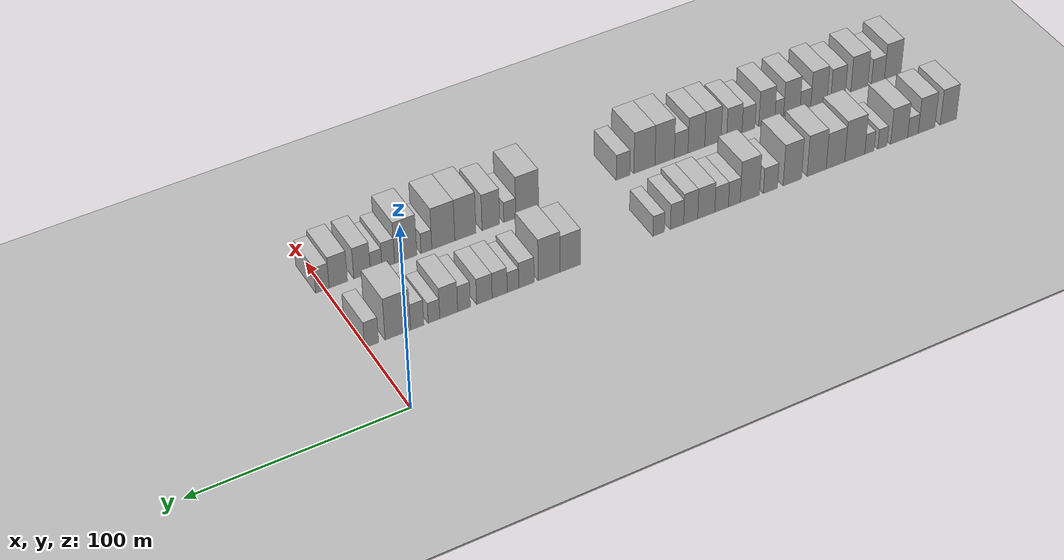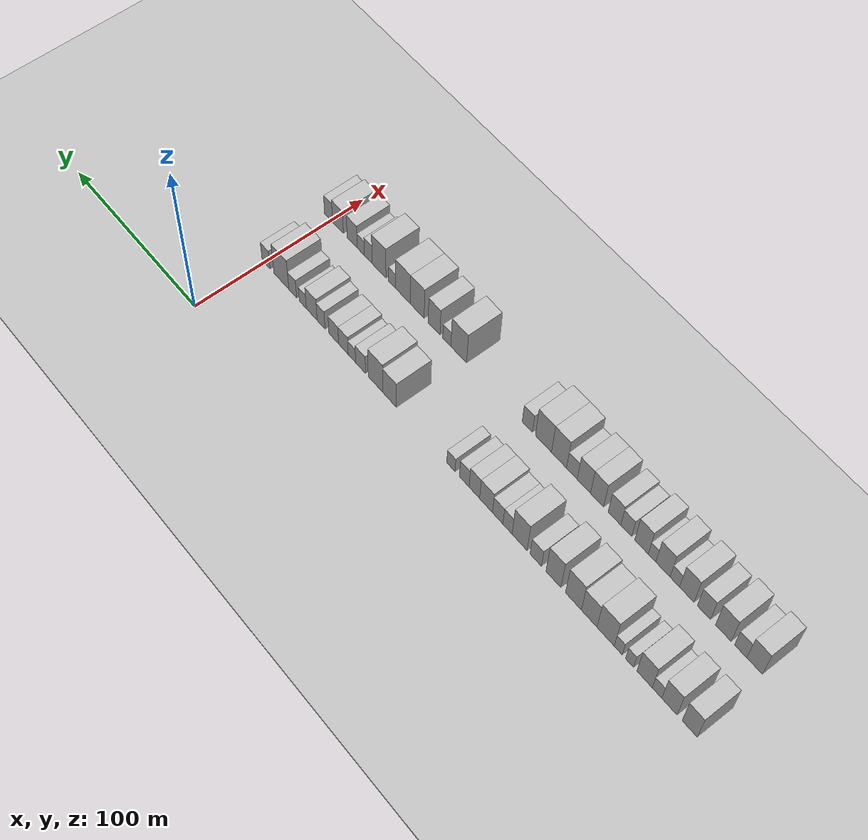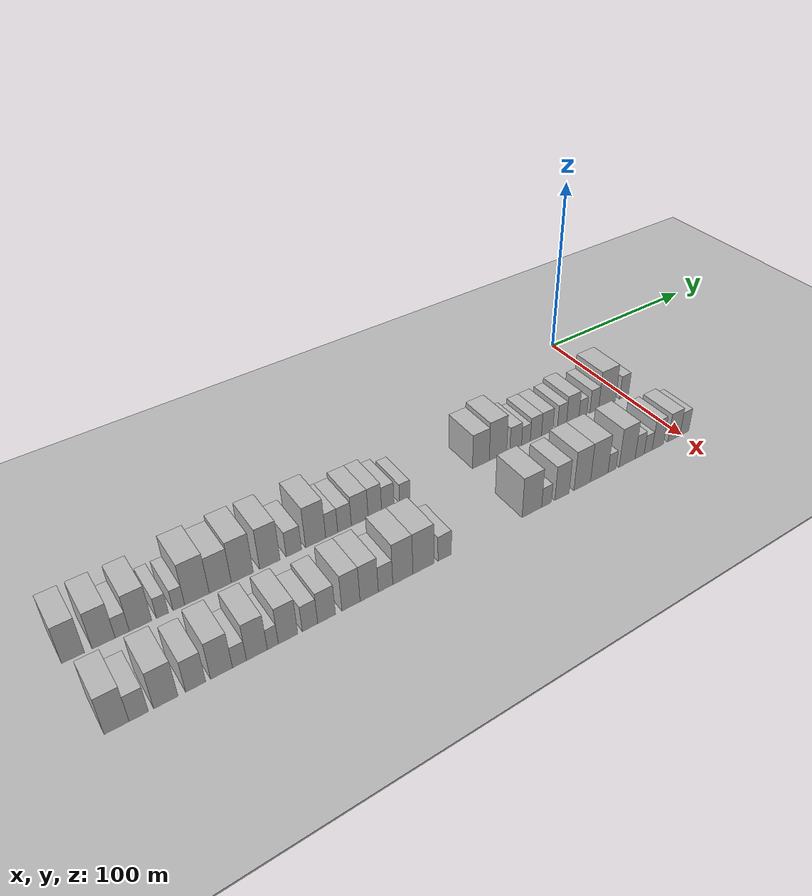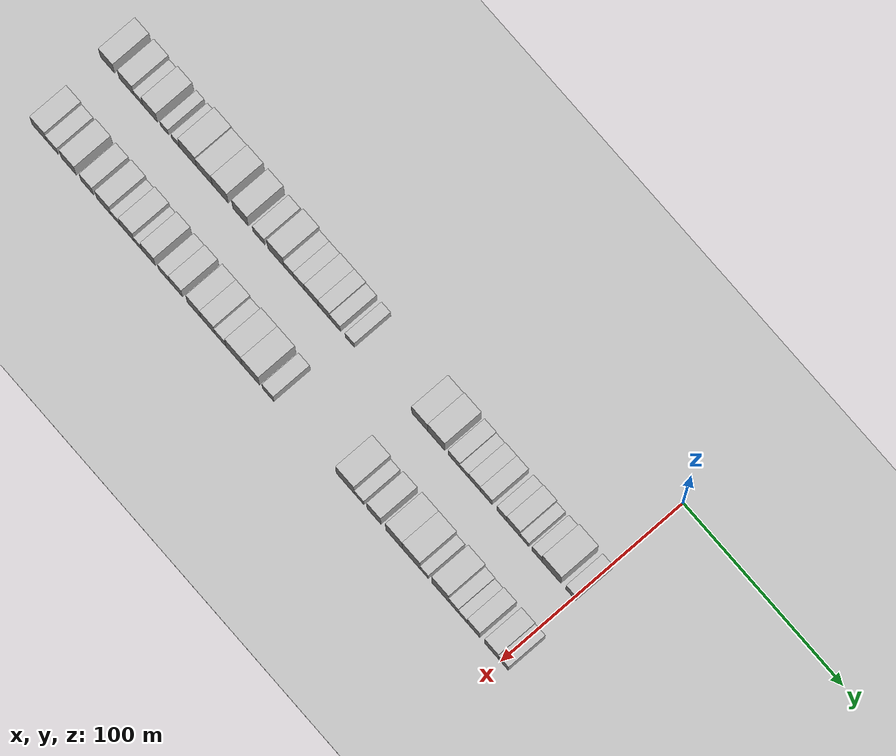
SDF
<sdf version="1.6">
 <world name="default">
  <include><name>ground_plane_1</name><uri>model://HANNAS_ground_plane</uri></include>
  <include>
   <name>ground_plane_2</name>
   <uri>model://HANNAS_ground_plane</uri>
   <pose>100 0 0  0 0 0</pose>
  </include>
  <model name="building_1">
   <static>1</static>
   <pose>50.0000 -295.5026 0 0.000000 0.000000 0.000000</pose>
   <link name="link">
    <pose>0 0 10.50 0 0 0</pose>
    <collision name="collision"><geometry><box><size>20.0000 8.9949 21.0000</size></box></geometry></collision>
    <visual name="visual">
     <cast_shadows>0</cast_shadows>
     <geometry><box><size>20.0000 8.9949 21.0000</size></box></geometry>
     <material>
      <script>
       <uri>model://HANNAS_wall/materials/scripts</uri>
       <uri>model://HANNAS_wall/materials/textures</uri>
       <name>vrc/HANNAS_wall</name>
      </script>
     </material>
    </visual>
   </link>
  </model>
  <model name="building_2">
   <static>1</static>
   <pose>50.0000 -283.3810 0 0.000000 0.000000 0.000000</pose>
   <link name="link">
    <pose>0 0 10.50 0 0 0</pose>
    <collision name="collision"><geometry><box><size>20.0000 9.2483 21.0000</size></box></geometry></collision>
    <visual name="visual">
     <cast_shadows>0</cast_shadows>
     <geometry><box><size>20.0000 9.2483 21.0000</size></box></geometry>
     <material>
      <script>
       <uri>model://HANNAS_wall/materials/scripts</uri>
       <uri>model://HANNAS_wall/materials/textures</uri>
       <name>vrc/HANNAS_wall</name>
      </script>
     </material>
    </visual>
   </link>
  </model>
  <model name="building_3">
   <static>1</static>
   <pose>50.0000 -275.8437 0 0.000000 0.000000 0.000000</pose>
   <link name="link">
    <pose>0 0 6.00 0 0 0</pose>
    <collision name="collision"><geometry><box><size>20.0000 5.8264 12.0000</size></box></geometry></collision>
    <visual name="visual">
     <cast_shadows>0</cast_shadows>
     <geometry><box><size>20.0000 5.8264 12.0000</size></box></geometry>
     <material>
      <script>
       <uri>model://HANNAS_wall/materials/scripts</uri>
       <uri>model://HANNAS_wall/materials/textures</uri>
       <name>vrc/HANNAS_wall</name>
      </script>
     </material>
    </visual>
   </link>
  </model>
  <model name="building_4">
   <static>1</static>
   <pose>50.0000 -268.2527 0 0.000000 0.000000 0.000000</pose>
   <link name="link">
    <pose>0 0 10.50 0 0 0</pose>
    <collision name="collision"><geometry><box><size>20.0000 9.3556 21.0000</size></box></geometry></collision>
    <visual name="visual">
     <cast_shadows>0</cast_shadows>
     <geometry><box><size>20.0000 9.3556 21.0000</size></box></geometry>
     <material>
      <script>
       <uri>model://HANNAS_wall/materials/scripts</uri>
       <uri>model://HANNAS_wall/materials/textures</uri>
       <name>vrc/HANNAS_wall</name>
      </script>
     </material>
    </visual>
   </link>
  </model>
  <model name="building_5">
   <static>1</static>
   <pose>50.0000 -259.0420 0 0.000000 0.000000 0.000000</pose>
   <link name="link">
    <pose>0 0 6.00 0 0 0</pose>
    <collision name="collision"><geometry><box><size>20.0000 5.0658 12.0000</size></box></geometry></collision>
    <visual name="visual">
     <cast_shadows>0</cast_shadows>
     <geometry><box><size>20.0000 5.0658 12.0000</size></box></geometry>
     <material>
      <script>
       <uri>model://HANNAS_wall/materials/scripts</uri>
       <uri>model://HANNAS_wall/materials/textures</uri>
       <name>vrc/HANNAS_wall</name>
      </script>
     </material>
    </visual>
   </link>
  </model>
  <model name="building_6">
   <static>1</static>
   <pose>50.0000 -251.9958 0 0.000000 0.000000 0.000000</pose>
   <link name="link">
    <pose>0 0 6.00 0 0 0</pose>
    <collision name="collision"><geometry><box><size>20.0000 5.0266 12.0000</size></box></geometry></collision>
    <visual name="visual">
     <cast_shadows>0</cast_shadows>
     <geometry><box><size>20.0000 5.0266 12.0000</size></box></geometry>
     <material>
      <script>
       <uri>model://HANNAS_wall/materials/scripts</uri>
       <uri>model://HANNAS_wall/materials/textures</uri>
       <name>vrc/HANNAS_wall</name>
      </script>
     </material>
    </visual>
   </link>
  </model>
  <model name="building_7">
   <static>1</static>
   <pose>50.0000 -244.0450 0 0.000000 0.000000 0.000000</pose>
   <link name="link">
    <pose>0 0 12.00 0 0 0</pose>
    <collision name="collision"><geometry><box><size>20.0000 10.8750 24.0000</size></box></geometry></collision>
    <visual name="visual">
     <cast_shadows>0</cast_shadows>
     <geometry><box><size>20.0000 10.8750 24.0000</size></box></geometry>
     <material>
      <script>
       <uri>model://HANNAS_wall/materials/scripts</uri>
       <uri>model://HANNAS_wall/materials/textures</uri>
       <name>vrc/HANNAS_wall</name>
      </script>
     </material>
    </visual>
   </link>
  </model>
  <model name="building_8">
   <static>1</static>
   <pose>50.0000 -233.6222 0 0.000000 0.000000 0.000000</pose>
   <link name="link">
    <pose>0 0 10.50 0 0 0</pose>
    <collision name="collision"><geometry><box><size>20.0000 9.9707 21.0000</size></box></geometry></collision>
    <visual name="visual">
     <cast_shadows>0</cast_shadows>
     <geometry><box><size>20.0000 9.9707 21.0000</size></box></geometry>
     <material>
      <script>
       <uri>model://HANNAS_wall/materials/scripts</uri>
       <uri>model://HANNAS_wall/materials/textures</uri>
       <name>vrc/HANNAS_wall</name>
      </script>
     </material>
    </visual>
   </link>
  </model>
  <model name="building_9">
   <static>1</static>
   <pose>50.0000 -223.5442 0 0.000000 0.000000 0.000000</pose>
   <link name="link">
    <pose>0 0 12.00 0 0 0</pose>
    <collision name="collision"><geometry><box><size>20.0000 10.1853 24.0000</size></box></geometry></collision>
    <visual name="visual">
     <cast_shadows>0</cast_shadows>
     <geometry><box><size>20.0000 10.1853 24.0000</size></box></geometry>
     <material>
      <script>
       <uri>model://HANNAS_wall/materials/scripts</uri>
       <uri>model://HANNAS_wall/materials/textures</uri>
       <name>vrc/HANNAS_wall</name>
      </script>
     </material>
    </visual>
   </link>
  </model>
  <model name="building_10">
   <static>1</static>
   <pose>50.0000 -210.5906 0 0.000000 0.000000 0.000000</pose>
   <link name="link">
    <pose>0 0 12.00 0 0 0</pose>
    <collision name="collision"><geometry><box><size>20.0000 9.7218 24.0000</size></box></geometry></collision>
    <visual name="visual">
     <cast_shadows>0</cast_shadows>
     <geometry><box><size>20.0000 9.7218 24.0000</size></box></geometry>
     <material>
      <script>
       <uri>model://HANNAS_wall/materials/scripts</uri>
       <uri>model://HANNAS_wall/materials/textures</uri>
       <name>vrc/HANNAS_wall</name>
      </script>
     </material>
    </visual>
   </link>
  </model>
  <model name="building_11">
   <static>1</static>
   <pose>50.0000 -198.9973 0 0.000000 0.000000 0.000000</pose>
   <link name="link">
    <pose>0 0 7.50 0 0 0</pose>
    <collision name="collision"><geometry><box><size>20.0000 7.4648 15.0000</size></box></geometry></collision>
    <visual name="visual">
     <cast_shadows>0</cast_shadows>
     <geometry><box><size>20.0000 7.4648 15.0000</size></box></geometry>
     <material>
      <script>
       <uri>model://HANNAS_wall/materials/scripts</uri>
       <uri>model://HANNAS_wall/materials/textures</uri>
       <name>vrc/HANNAS_wall</name>
      </script>
     </material>
    </visual>
   </link>
  </model>
  <model name="building_12">
   <static>1</static>
   <pose>50.0000 -188.2195 0 0.000000 0.000000 0.000000</pose>
   <link name="link">
    <pose>0 0 12.00 0 0 0</pose>
    <collision name="collision"><geometry><box><size>20.0000 10.0909 24.0000</size></box></geometry></collision>
    <visual name="visual">
     <cast_shadows>0</cast_shadows>
     <geometry><box><size>20.0000 10.0909 24.0000</size></box></geometry>
     <material>
      <script>
       <uri>model://HANNAS_wall/materials/scripts</uri>
       <uri>model://HANNAS_wall/materials/textures</uri>
       <name>vrc/HANNAS_wall</name>
      </script>
     </material>
    </visual>
   </link>
  </model>
  <model name="building_13">
   <static>1</static>
   <pose>50.0000 -180.0950 0 0.000000 0.000000 0.000000</pose>
   <link name="link">
    <pose>0 0 7.50 0 0 0</pose>
    <collision name="collision"><geometry><box><size>20.0000 6.1581 15.0000</size></box></geometry></collision>
    <visual name="visual">
     <cast_shadows>0</cast_shadows>
     <geometry><box><size>20.0000 6.1581 15.0000</size></box></geometry>
     <material>
      <script>
       <uri>model://HANNAS_wall/materials/scripts</uri>
       <uri>model://HANNAS_wall/materials/textures</uri>
       <name>vrc/HANNAS_wall</name>
      </script>
     </material>
    </visual>
   </link>
  </model>
  <model name="building_14">
   <static>1</static>
   <pose>50.0000 -173.4898 0 0.000000 0.000000 0.000000</pose>
   <link name="link">
    <pose>0 0 7.50 0 0 0</pose>
    <collision name="collision"><geometry><box><size>20.0000 7.0522 15.0000</size></box></geometry></collision>
    <visual name="visual">
     <cast_shadows>0</cast_shadows>
     <geometry><box><size>20.0000 7.0522 15.0000</size></box></geometry>
     <material>
      <script>
       <uri>model://HANNAS_wall/materials/scripts</uri>
       <uri>model://HANNAS_wall/materials/textures</uri>
       <name>vrc/HANNAS_wall</name>
      </script>
     </material>
    </visual>
   </link>
  </model>
  <model name="building_15">
   <static>1</static>
   <pose>50.0000 -165.5544 0 0.000000 0.000000 0.000000</pose>
   <link name="link">
    <pose>0 0 9.00 0 0 0</pose>
    <collision name="collision"><geometry><box><size>20.0000 8.8187 18.0000</size></box></geometry></collision>
    <visual name="visual">
     <cast_shadows>0</cast_shadows>
     <geometry><box><size>20.0000 8.8187 18.0000</size></box></geometry>
     <material>
      <script>
       <uri>model://HANNAS_wall/materials/scripts</uri>
       <uri>model://HANNAS_wall/materials/textures</uri>
       <name>vrc/HANNAS_wall</name>
      </script>
     </material>
    </visual>
   </link>
  </model>
  <model name="building_16">
   <static>1</static>
   <pose>50.0000 -157.5196 0 0.000000 0.000000 0.000000</pose>
   <link name="link">
    <pose>0 0 9.00 0 0 0</pose>
    <collision name="collision"><geometry><box><size>20.0000 7.2508 18.0000</size></box></geometry></collision>
    <visual name="visual">
     <cast_shadows>0</cast_shadows>
     <geometry><box><size>20.0000 7.2508 18.0000</size></box></geometry>
     <material>
      <script>
       <uri>model://HANNAS_wall/materials/scripts</uri>
       <uri>model://HANNAS_wall/materials/textures</uri>
       <name>vrc/HANNAS_wall</name>
      </script>
     </material>
    </visual>
   </link>
  </model>
  <model name="building_17">
   <static>1</static>
   <pose>50.0000 -150.5241 0 0.000000 0.000000 0.000000</pose>
   <link name="link">
    <pose>0 0 7.50 0 0 0</pose>
    <collision name="collision"><geometry><box><size>20.0000 6.7403 15.0000</size></box></geometry></collision>
    <visual name="visual">
     <cast_shadows>0</cast_shadows>
     <geometry><box><size>20.0000 6.7403 15.0000</size></box></geometry>
     <material>
      <script>
       <uri>model://HANNAS_wall/materials/scripts</uri>
       <uri>model://HANNAS_wall/materials/textures</uri>
       <name>vrc/HANNAS_wall</name>
      </script>
     </material>
    </visual>
   </link>
  </model>
  <model name="building_18">
   <static>1</static>
   <pose>50.0000 -141.2317 0 0.000000 0.000000 0.000000</pose>
   <link name="link">
    <pose>0 0 6.00 0 0 0</pose>
    <collision name="collision"><geometry><box><size>20.0000 5.8443 12.0000</size></box></geometry></collision>
    <visual name="visual">
     <cast_shadows>0</cast_shadows>
     <geometry><box><size>20.0000 5.8443 12.0000</size></box></geometry>
     <material>
      <script>
       <uri>model://HANNAS_wall/materials/scripts</uri>
       <uri>model://HANNAS_wall/materials/textures</uri>
       <name>vrc/HANNAS_wall</name>
      </script>
     </material>
    </visual>
   </link>
  </model>
  <model name="building_19">
   <static>1</static>
   <pose>50.0000 -97.0741 0 0.000000 0.000000 0.000000</pose>
   <link name="link">
    <pose>0 0 10.50 0 0 0</pose>
    <collision name="collision"><geometry><box><size>20.0000 10.1570 21.0000</size></box></geometry></collision>
    <visual name="visual">
     <cast_shadows>0</cast_shadows>
     <geometry><box><size>20.0000 10.1570 21.0000</size></box></geometry>
     <material>
      <script>
       <uri>model://HANNAS_wall/materials/scripts</uri>
       <uri>model://HANNAS_wall/materials/textures</uri>
       <name>vrc/HANNAS_wall</name>
      </script>
     </material>
    </visual>
   </link>
  </model>
  <model name="building_20">
   <static>1</static>
   <pose>50.0000 -86.6229 0 0.000000 0.000000 0.000000</pose>
   <link name="link">
    <pose>0 0 12.00 0 0 0</pose>
    <collision name="collision"><geometry><box><size>20.0000 10.7454 24.0000</size></box></geometry></collision>
    <visual name="visual">
     <cast_shadows>0</cast_shadows>
     <geometry><box><size>20.0000 10.7454 24.0000</size></box></geometry>
     <material>
      <script>
       <uri>model://HANNAS_wall/materials/scripts</uri>
       <uri>model://HANNAS_wall/materials/textures</uri>
       <name>vrc/HANNAS_wall</name>
      </script>
     </material>
    </visual>
   </link>
  </model>
  <model name="building_21">
   <static>1</static>
   <pose>50.0000 -75.5183 0 0.000000 0.000000 0.000000</pose>
   <link name="link">
    <pose>0 0 7.50 0 0 0</pose>
    <collision name="collision"><geometry><box><size>20.0000 7.4639 15.0000</size></box></geometry></collision>
    <visual name="visual">
     <cast_shadows>0</cast_shadows>
     <geometry><box><size>20.0000 7.4639 15.0000</size></box></geometry>
     <material>
      <script>
       <uri>model://HANNAS_wall/materials/scripts</uri>
       <uri>model://HANNAS_wall/materials/textures</uri>
       <name>vrc/HANNAS_wall</name>
      </script>
     </material>
    </visual>
   </link>
  </model>
  <model name="building_22">
   <static>1</static>
   <pose>50.0000 -68.9887 0 0.000000 0.000000 0.000000</pose>
   <link name="link">
    <pose>0 0 6.00 0 0 0</pose>
    <collision name="collision"><geometry><box><size>20.0000 5.5952 12.0000</size></box></geometry></collision>
    <visual name="visual">
     <cast_shadows>0</cast_shadows>
     <geometry><box><size>20.0000 5.5952 12.0000</size></box></geometry>
     <material>
      <script>
       <uri>model://HANNAS_wall/materials/scripts</uri>
       <uri>model://HANNAS_wall/materials/textures</uri>
       <name>vrc/HANNAS_wall</name>
      </script>
     </material>
    </visual>
   </link>
  </model>
  <model name="building_23">
   <static>1</static>
   <pose>50.0000 -62.5589 0 0.000000 0.000000 0.000000</pose>
   <link name="link">
    <pose>0 0 7.50 0 0 0</pose>
    <collision name="collision"><geometry><box><size>20.0000 7.2644 15.0000</size></box></geometry></collision>
    <visual name="visual">
     <cast_shadows>0</cast_shadows>
     <geometry><box><size>20.0000 7.2644 15.0000</size></box></geometry>
     <material>
      <script>
       <uri>model://HANNAS_wall/materials/scripts</uri>
       <uri>model://HANNAS_wall/materials/textures</uri>
       <name>vrc/HANNAS_wall</name>
      </script>
     </material>
    </visual>
   </link>
  </model>
  <model name="building_24">
   <static>1</static>
   <pose>50.0000 -55.1906 0 0.000000 0.000000 0.000000</pose>
   <link name="link">
    <pose>0 0 7.50 0 0 0</pose>
    <collision name="collision"><geometry><box><size>20.0000 7.4722 15.0000</size></box></geometry></collision>
    <visual name="visual">
     <cast_shadows>0</cast_shadows>
     <geometry><box><size>20.0000 7.4722 15.0000</size></box></geometry>
     <material>
      <script>
       <uri>model://HANNAS_wall/materials/scripts</uri>
       <uri>model://HANNAS_wall/materials/textures</uri>
       <name>vrc/HANNAS_wall</name>
      </script>
     </material>
    </visual>
   </link>
  </model>
  <model name="building_25">
   <static>1</static>
   <pose>50.0000 -45.4185 0 0.000000 0.000000 0.000000</pose>
   <link name="link">
    <pose>0 0 7.50 0 0 0</pose>
    <collision name="collision"><geometry><box><size>20.0000 6.0720 15.0000</size></box></geometry></collision>
    <visual name="visual">
     <cast_shadows>0</cast_shadows>
     <geometry><box><size>20.0000 6.0720 15.0000</size></box></geometry>
     <material>
      <script>
       <uri>model://HANNAS_wall/materials/scripts</uri>
       <uri>model://HANNAS_wall/materials/textures</uri>
       <name>vrc/HANNAS_wall</name>
      </script>
     </material>
    </visual>
   </link>
  </model>
  <model name="building_26">
   <static>1</static>
   <pose>50.0000 -38.1302 0 0.000000 0.000000 0.000000</pose>
   <link name="link">
    <pose>0 0 9.00 0 0 0</pose>
    <collision name="collision"><geometry><box><size>20.0000 8.5045 18.0000</size></box></geometry></collision>
    <visual name="visual">
     <cast_shadows>0</cast_shadows>
     <geometry><box><size>20.0000 8.5045 18.0000</size></box></geometry>
     <material>
      <script>
       <uri>model://HANNAS_wall/materials/scripts</uri>
       <uri>model://HANNAS_wall/materials/textures</uri>
       <name>vrc/HANNAS_wall</name>
      </script>
     </material>
    </visual>
   </link>
  </model>
  <model name="building_27">
   <static>1</static>
   <pose>50.0000 -31.1226 0 0.000000 0.000000 0.000000</pose>
   <link name="link">
    <pose>0 0 6.00 0 0 0</pose>
    <collision name="collision"><geometry><box><size>20.0000 5.5108 12.0000</size></box></geometry></collision>
    <visual name="visual">
     <cast_shadows>0</cast_shadows>
     <geometry><box><size>20.0000 5.5108 12.0000</size></box></geometry>
     <material>
      <script>
       <uri>model://HANNAS_wall/materials/scripts</uri>
       <uri>model://HANNAS_wall/materials/textures</uri>
       <name>vrc/HANNAS_wall</name>
      </script>
     </material>
    </visual>
   </link>
  </model>
  <model name="building_28">
   <static>1</static>
   <pose>50.0000 -23.2598 0 0.000000 0.000000 0.000000</pose>
   <link name="link">
    <pose>0 0 7.50 0 0 0</pose>
    <collision name="collision"><geometry><box><size>20.0000 6.2147 15.0000</size></box></geometry></collision>
    <visual name="visual">
     <cast_shadows>0</cast_shadows>
     <geometry><box><size>20.0000 6.2147 15.0000</size></box></geometry>
     <material>
      <script>
       <uri>model://HANNAS_wall/materials/scripts</uri>
       <uri>model://HANNAS_wall/materials/textures</uri>
       <name>vrc/HANNAS_wall</name>
      </script>
     </material>
    </visual>
   </link>
  </model>
  <model name="building_29">
   <static>1</static>
   <pose>50.0000 -14.1580 0 0.000000 0.000000 0.000000</pose>
   <link name="link">
    <pose>0 0 12.00 0 0 0</pose>
    <collision name="collision"><geometry><box><size>20.0000 11.9890 24.0000</size></box></geometry></collision>
    <visual name="visual">
     <cast_shadows>0</cast_shadows>
     <geometry><box><size>20.0000 11.9890 24.0000</size></box></geometry>
     <material>
      <script>
       <uri>model://HANNAS_wall/materials/scripts</uri>
       <uri>model://HANNAS_wall/materials/textures</uri>
       <name>vrc/HANNAS_wall</name>
      </script>
     </material>
    </visual>
   </link>
  </model>
  <model name="building_30">
   <static>1</static>
   <pose>50.0000 -1.9397 0 0.000000 0.000000 0.000000</pose>
   <link name="link">
    <pose>0 0 7.50 0 0 0</pose>
    <collision name="collision"><geometry><box><size>20.0000 6.4475 15.0000</size></box></geometry></collision>
    <visual name="visual">
     <cast_shadows>0</cast_shadows>
     <geometry><box><size>20.0000 6.4475 15.0000</size></box></geometry>
     <material>
      <script>
       <uri>model://HANNAS_wall/materials/scripts</uri>
       <uri>model://HANNAS_wall/materials/textures</uri>
       <name>vrc/HANNAS_wall</name>
      </script>
     </material>
    </visual>
   </link>
  </model>
  <model name="building_61">
   <static>1</static>
   <pose>90.0000 -292.3551 0 0.000000 0.000000 0.000000</pose>
   <link name="link">
    <pose>0 0 10.50 0 0 0</pose>
    <collision name="collision"><geometry><box><size>20.0000 9.2899 21.0000</size></box></geometry></collision>
    <visual name="visual">
     <cast_shadows>0</cast_shadows>
     <geometry><box><size>20.0000 9.2899 21.0000</size></box></geometry>
     <material>
      <script>
       <uri>model://HANNAS_wall/materials/scripts</uri>
       <uri>model://HANNAS_wall/materials/textures</uri>
       <name>vrc/HANNAS_wall</name>
      </script>
     </material>
    </visual>
   </link>
  </model>
  <model name="building_62">
   <static>1</static>
   <pose>90.0000 -284.0336 0 0.000000 0.000000 0.000000</pose>
   <link name="link">
    <pose>0 0 7.50 0 0 0</pose>
    <collision name="collision"><geometry><box><size>20.0000 7.3530 15.0000</size></box></geometry></collision>
    <visual name="visual">
     <cast_shadows>0</cast_shadows>
     <geometry><box><size>20.0000 7.3530 15.0000</size></box></geometry>
     <material>
      <script>
       <uri>model://HANNAS_wall/materials/scripts</uri>
       <uri>model://HANNAS_wall/materials/textures</uri>
       <name>vrc/HANNAS_wall</name>
      </script>
     </material>
    </visual>
   </link>
  </model>
  <model name="building_63">
   <static>1</static>
   <pose>90.0000 -273.5886 0 0.000000 0.000000 0.000000</pose>
   <link name="link">
    <pose>0 0 10.50 0 0 0</pose>
    <collision name="collision"><geometry><box><size>20.0000 9.5371 21.0000</size></box></geometry></collision>
    <visual name="visual">
     <cast_shadows>0</cast_shadows>
     <geometry><box><size>20.0000 9.5371 21.0000</size></box></geometry>
     <material>
      <script>
       <uri>model://HANNAS_wall/materials/scripts</uri>
       <uri>model://HANNAS_wall/materials/textures</uri>
       <name>vrc/HANNAS_wall</name>
      </script>
     </material>
    </visual>
   </link>
  </model>
  <model name="building_64">
   <static>1</static>
   <pose>90.0000 -261.7767 0 0.000000 0.000000 0.000000</pose>
   <link name="link">
    <pose>0 0 9.00 0 0 0</pose>
    <collision name="collision"><geometry><box><size>20.0000 8.0865 18.0000</size></box></geometry></collision>
    <visual name="visual">
     <cast_shadows>0</cast_shadows>
     <geometry><box><size>20.0000 8.0865 18.0000</size></box></geometry>
     <material>
      <script>
       <uri>model://HANNAS_wall/materials/scripts</uri>
       <uri>model://HANNAS_wall/materials/textures</uri>
       <name>vrc/HANNAS_wall</name>
      </script>
     </material>
    </visual>
   </link>
  </model>
  <model name="building_65">
   <static>1</static>
   <pose>90.0000 -251.2065 0 0.000000 0.000000 0.000000</pose>
   <link name="link">
    <pose>0 0 10.50 0 0 0</pose>
    <collision name="collision"><geometry><box><size>20.0000 9.0539 21.0000</size></box></geometry></collision>
    <visual name="visual">
     <cast_shadows>0</cast_shadows>
     <geometry><box><size>20.0000 9.0539 21.0000</size></box></geometry>
     <material>
      <script>
       <uri>model://HANNAS_wall/materials/scripts</uri>
       <uri>model://HANNAS_wall/materials/textures</uri>
       <name>vrc/HANNAS_wall</name>
      </script>
     </material>
    </visual>
   </link>
  </model>
  <model name="building_66">
   <static>1</static>
   <pose>90.0000 -243.7180 0 0.000000 0.000000 0.000000</pose>
   <link name="link">
    <pose>0 0 6.00 0 0 0</pose>
    <collision name="collision"><geometry><box><size>20.0000 5.9230 12.0000</size></box></geometry></collision>
    <visual name="visual">
     <cast_shadows>0</cast_shadows>
     <geometry><box><size>20.0000 5.9230 12.0000</size></box></geometry>
     <material>
      <script>
       <uri>model://HANNAS_wall/materials/scripts</uri>
       <uri>model://HANNAS_wall/materials/textures</uri>
       <name>vrc/HANNAS_wall</name>
      </script>
     </material>
    </visual>
   </link>
  </model>
  <model name="building_67">
   <static>1</static>
   <pose>90.0000 -236.2722 0 0.000000 0.000000 0.000000</pose>
   <link name="link">
    <pose>0 0 10.50 0 0 0</pose>
    <collision name="collision"><geometry><box><size>20.0000 8.9688 21.0000</size></box></geometry></collision>
    <visual name="visual">
     <cast_shadows>0</cast_shadows>
     <geometry><box><size>20.0000 8.9688 21.0000</size></box></geometry>
     <material>
      <script>
       <uri>model://HANNAS_wall/materials/scripts</uri>
       <uri>model://HANNAS_wall/materials/textures</uri>
       <name>vrc/HANNAS_wall</name>
      </script>
     </material>
    </visual>
   </link>
  </model>
  <model name="building_68">
   <static>1</static>
   <pose>90.0000 -229.3848 0 0.000000 0.000000 0.000000</pose>
   <link name="link">
    <pose>0 0 6.00 0 0 0</pose>
    <collision name="collision"><geometry><box><size>20.0000 4.8060 12.0000</size></box></geometry></collision>
    <visual name="visual">
     <cast_shadows>0</cast_shadows>
     <geometry><box><size>20.0000 4.8060 12.0000</size></box></geometry>
     <material>
      <script>
       <uri>model://HANNAS_wall/materials/scripts</uri>
       <uri>model://HANNAS_wall/materials/textures</uri>
       <name>vrc/HANNAS_wall</name>
      </script>
     </material>
    </visual>
   </link>
  </model>
  <model name="building_69">
   <static>1</static>
   <pose>90.0000 -222.6637 0 0.000000 0.000000 0.000000</pose>
   <link name="link">
    <pose>0 0 10.50 0 0 0</pose>
    <collision name="collision"><geometry><box><size>20.0000 8.6363 21.0000</size></box></geometry></collision>
    <visual name="visual">
     <cast_shadows>0</cast_shadows>
     <geometry><box><size>20.0000 8.6363 21.0000</size></box></geometry>
     <material>
      <script>
       <uri>model://HANNAS_wall/materials/scripts</uri>
       <uri>model://HANNAS_wall/materials/textures</uri>
       <name>vrc/HANNAS_wall</name>
      </script>
     </material>
    </visual>
   </link>
  </model>
  <model name="building_70">
   <static>1</static>
   <pose>90.0000 -212.8325 0 0.000000 0.000000 0.000000</pose>
   <link name="link">
    <pose>0 0 7.50 0 0 0</pose>
    <collision name="collision"><geometry><box><size>20.0000 7.0260 15.0000</size></box></geometry></collision>
    <visual name="visual">
     <cast_shadows>0</cast_shadows>
     <geometry><box><size>20.0000 7.0260 15.0000</size></box></geometry>
     <material>
      <script>
       <uri>model://HANNAS_wall/materials/scripts</uri>
       <uri>model://HANNAS_wall/materials/textures</uri>
       <name>vrc/HANNAS_wall</name>
      </script>
     </material>
    </visual>
   </link>
  </model>
  <model name="building_71">
   <static>1</static>
   <pose>90.0000 -205.1941 0 0.000000 0.000000 0.000000</pose>
   <link name="link">
    <pose>0 0 9.00 0 0 0</pose>
    <collision name="collision"><geometry><box><size>20.0000 8.2509 18.0000</size></box></geometry></collision>
    <visual name="visual">
     <cast_shadows>0</cast_shadows>
     <geometry><box><size>20.0000 8.2509 18.0000</size></box></geometry>
     <material>
      <script>
       <uri>model://HANNAS_wall/materials/scripts</uri>
       <uri>model://HANNAS_wall/materials/textures</uri>
       <name>vrc/HANNAS_wall</name>
      </script>
     </material>
    </visual>
   </link>
  </model>
  <model name="building_72">
   <static>1</static>
   <pose>90.0000 -193.7443 0 0.000000 0.000000 0.000000</pose>
   <link name="link">
    <pose>0 0 10.50 0 0 0</pose>
    <collision name="collision"><geometry><box><size>20.0000 8.6487 21.0000</size></box></geometry></collision>
    <visual name="visual">
     <cast_shadows>0</cast_shadows>
     <geometry><box><size>20.0000 8.6487 21.0000</size></box></geometry>
     <material>
      <script>
       <uri>model://HANNAS_wall/materials/scripts</uri>
       <uri>model://HANNAS_wall/materials/textures</uri>
       <name>vrc/HANNAS_wall</name>
      </script>
     </material>
    </visual>
   </link>
  </model>
  <model name="building_73">
   <static>1</static>
   <pose>90.0000 -184.9889 0 0.000000 0.000000 0.000000</pose>
   <link name="link">
    <pose>0 0 10.50 0 0 0</pose>
    <collision name="collision"><geometry><box><size>20.0000 8.8621 21.0000</size></box></geometry></collision>
    <visual name="visual">
     <cast_shadows>0</cast_shadows>
     <geometry><box><size>20.0000 8.8621 21.0000</size></box></geometry>
     <material>
      <script>
       <uri>model://HANNAS_wall/materials/scripts</uri>
       <uri>model://HANNAS_wall/materials/textures</uri>
       <name>vrc/HANNAS_wall</name>
      </script>
     </material>
    </visual>
   </link>
  </model>
  <model name="building_74">
   <static>1</static>
   <pose>90.0000 -176.9765 0 0.000000 0.000000 0.000000</pose>
   <link name="link">
    <pose>0 0 7.50 0 0 0</pose>
    <collision name="collision"><geometry><box><size>20.0000 7.1626 15.0000</size></box></geometry></collision>
    <visual name="visual">
     <cast_shadows>0</cast_shadows>
     <geometry><box><size>20.0000 7.1626 15.0000</size></box></geometry>
     <material>
      <script>
       <uri>model://HANNAS_wall/materials/scripts</uri>
       <uri>model://HANNAS_wall/materials/textures</uri>
       <name>vrc/HANNAS_wall</name>
      </script>
     </material>
    </visual>
   </link>
  </model>
  <model name="building_75">
   <static>1</static>
   <pose>90.0000 -168.3043 0 0.000000 0.000000 0.000000</pose>
   <link name="link">
    <pose>0 0 12.00 0 0 0</pose>
    <collision name="collision"><geometry><box><size>20.0000 10.1817 24.0000</size></box></geometry></collision>
    <visual name="visual">
     <cast_shadows>0</cast_shadows>
     <geometry><box><size>20.0000 10.1817 24.0000</size></box></geometry>
     <material>
      <script>
       <uri>model://HANNAS_wall/materials/scripts</uri>
       <uri>model://HANNAS_wall/materials/textures</uri>
       <name>vrc/HANNAS_wall</name>
      </script>
     </material>
    </visual>
   </link>
  </model>
  <model name="building_76">
   <static>1</static>
   <pose>90.0000 -157.7123 0 0.000000 0.000000 0.000000</pose>
   <link name="link">
    <pose>0 0 12.00 0 0 0</pose>
    <collision name="collision"><geometry><box><size>20.0000 11.0024 24.0000</size></box></geometry></collision>
    <visual name="visual">
     <cast_shadows>0</cast_shadows>
     <geometry><box><size>20.0000 11.0024 24.0000</size></box></geometry>
     <material>
      <script>
       <uri>model://HANNAS_wall/materials/scripts</uri>
       <uri>model://HANNAS_wall/materials/textures</uri>
       <name>vrc/HANNAS_wall</name>
      </script>
     </material>
    </visual>
   </link>
  </model>
  <model name="building_77">
   <static>1</static>
   <pose>90.0000 -146.6586 0 0.000000 0.000000 0.000000</pose>
   <link name="link">
    <pose>0 0 7.50 0 0 0</pose>
    <collision name="collision"><geometry><box><size>20.0000 7.1049 15.0000</size></box></geometry></collision>
    <visual name="visual">
     <cast_shadows>0</cast_shadows>
     <geometry><box><size>20.0000 7.1049 15.0000</size></box></geometry>
     <material>
      <script>
       <uri>model://HANNAS_wall/materials/scripts</uri>
       <uri>model://HANNAS_wall/materials/textures</uri>
       <name>vrc/HANNAS_wall</name>
      </script>
     </material>
    </visual>
   </link>
  </model>
  <model name="building_78">
   <static>1</static>
   <pose>90.0000 -97.8564 0 0.000000 0.000000 0.000000</pose>
   <link name="link">
    <pose>0 0 12.00 0 0 0</pose>
    <collision name="collision"><geometry><box><size>20.0000 11.4998 24.0000</size></box></geometry></collision>
    <visual name="visual">
     <cast_shadows>0</cast_shadows>
     <geometry><box><size>20.0000 11.4998 24.0000</size></box></geometry>
     <material>
      <script>
       <uri>model://HANNAS_wall/materials/scripts</uri>
       <uri>model://HANNAS_wall/materials/textures</uri>
       <name>vrc/HANNAS_wall</name>
      </script>
     </material>
    </visual>
   </link>
  </model>
  <model name="building_79">
   <static>1</static>
   <pose>90.0000 -89.1173 0 0.000000 0.000000 0.000000</pose>
   <link name="link">
    <pose>0 0 6.00 0 0 0</pose>
    <collision name="collision"><geometry><box><size>20.0000 5.9784 12.0000</size></box></geometry></collision>
    <visual name="visual">
     <cast_shadows>0</cast_shadows>
     <geometry><box><size>20.0000 5.9784 12.0000</size></box></geometry>
     <material>
      <script>
       <uri>model://HANNAS_wall/materials/scripts</uri>
       <uri>model://HANNAS_wall/materials/textures</uri>
       <name>vrc/HANNAS_wall</name>
      </script>
     </material>
    </visual>
   </link>
  </model>
  <model name="building_80">
   <static>1</static>
   <pose>90.0000 -79.7410 0 0.000000 0.000000 0.000000</pose>
   <link name="link">
    <pose>0 0 10.50 0 0 0</pose>
    <collision name="collision"><geometry><box><size>20.0000 8.7742 21.0000</size></box></geometry></collision>
    <visual name="visual">
     <cast_shadows>0</cast_shadows>
     <geometry><box><size>20.0000 8.7742 21.0000</size></box></geometry>
     <material>
      <script>
       <uri>model://HANNAS_wall/materials/scripts</uri>
       <uri>model://HANNAS_wall/materials/textures</uri>
       <name>vrc/HANNAS_wall</name>
      </script>
     </material>
    </visual>
   </link>
  </model>
  <model name="building_81">
   <static>1</static>
   <pose>90.0000 -67.1596 0 0.000000 0.000000 0.000000</pose>
   <link name="link">
    <pose>0 0 12.00 0 0 0</pose>
    <collision name="collision"><geometry><box><size>20.0000 10.3887 24.0000</size></box></geometry></collision>
    <visual name="visual">
     <cast_shadows>0</cast_shadows>
     <geometry><box><size>20.0000 10.3887 24.0000</size></box></geometry>
     <material>
      <script>
       <uri>model://HANNAS_wall/materials/scripts</uri>
       <uri>model://HANNAS_wall/materials/textures</uri>
       <name>vrc/HANNAS_wall</name>
      </script>
     </material>
    </visual>
   </link>
  </model>
  <model name="building_82">
   <static>1</static>
   <pose>90.0000 -56.3516 0 0.000000 0.000000 0.000000</pose>
   <link name="link">
    <pose>0 0 12.00 0 0 0</pose>
    <collision name="collision"><geometry><box><size>20.0000 11.2273 24.0000</size></box></geometry></collision>
    <visual name="visual">
     <cast_shadows>0</cast_shadows>
     <geometry><box><size>20.0000 11.2273 24.0000</size></box></geometry>
     <material>
      <script>
       <uri>model://HANNAS_wall/materials/scripts</uri>
       <uri>model://HANNAS_wall/materials/textures</uri>
       <name>vrc/HANNAS_wall</name>
      </script>
     </material>
    </visual>
   </link>
  </model>
  <model name="building_83">
   <static>1</static>
   <pose>90.0000 -48.0976 0 0.000000 0.000000 0.000000</pose>
   <link name="link">
    <pose>0 0 6.00 0 0 0</pose>
    <collision name="collision"><geometry><box><size>20.0000 5.2807 12.0000</size></box></geometry></collision>
    <visual name="visual">
     <cast_shadows>0</cast_shadows>
     <geometry><box><size>20.0000 5.2807 12.0000</size></box></geometry>
     <material>
      <script>
       <uri>model://HANNAS_wall/materials/scripts</uri>
       <uri>model://HANNAS_wall/materials/textures</uri>
       <name>vrc/HANNAS_wall</name>
      </script>
     </material>
    </visual>
   </link>
  </model>
  <model name="building_84">
   <static>1</static>
   <pose>90.0000 -38.0985 0 0.000000 0.000000 0.000000</pose>
   <link name="link">
    <pose>0 0 12.00 0 0 0</pose>
    <collision name="collision"><geometry><box><size>20.0000 10.7175 24.0000</size></box></geometry></collision>
    <visual name="visual">
     <cast_shadows>0</cast_shadows>
     <geometry><box><size>20.0000 10.7175 24.0000</size></box></geometry>
     <material>
      <script>
       <uri>model://HANNAS_wall/materials/scripts</uri>
       <uri>model://HANNAS_wall/materials/textures</uri>
       <name>vrc/HANNAS_wall</name>
      </script>
     </material>
    </visual>
   </link>
  </model>
  <model name="building_85">
   <static>1</static>
   <pose>90.0000 -29.6911 0 0.000000 0.000000 0.000000</pose>
   <link name="link">
    <pose>0 0 7.50 0 0 0</pose>
    <collision name="collision"><geometry><box><size>20.0000 6.0974 15.0000</size></box></geometry></collision>
    <visual name="visual">
     <cast_shadows>0</cast_shadows>
     <geometry><box><size>20.0000 6.0974 15.0000</size></box></geometry>
     <material>
      <script>
       <uri>model://HANNAS_wall/materials/scripts</uri>
       <uri>model://HANNAS_wall/materials/textures</uri>
       <name>vrc/HANNAS_wall</name>
      </script>
     </material>
    </visual>
   </link>
  </model>
  <model name="building_86">
   <static>1</static>
   <pose>90.0000 -23.8786 0 0.000000 0.000000 0.000000</pose>
   <link name="link">
    <pose>0 0 6.00 0 0 0</pose>
    <collision name="collision"><geometry><box><size>20.0000 5.5276 12.0000</size></box></geometry></collision>
    <visual name="visual">
     <cast_shadows>0</cast_shadows>
     <geometry><box><size>20.0000 5.5276 12.0000</size></box></geometry>
     <material>
      <script>
       <uri>model://HANNAS_wall/materials/scripts</uri>
       <uri>model://HANNAS_wall/materials/textures</uri>
       <name>vrc/HANNAS_wall</name>
      </script>
     </material>
    </visual>
   </link>
  </model>
  <model name="building_87">
   <static>1</static>
   <pose>90.0000 -17.1522 0 0.000000 0.000000 0.000000</pose>
   <link name="link">
    <pose>0 0 9.00 0 0 0</pose>
    <collision name="collision"><geometry><box><size>20.0000 7.9251 18.0000</size></box></geometry></collision>
    <visual name="visual">
     <cast_shadows>0</cast_shadows>
     <geometry><box><size>20.0000 7.9251 18.0000</size></box></geometry>
     <material>
      <script>
       <uri>model://HANNAS_wall/materials/scripts</uri>
       <uri>model://HANNAS_wall/materials/textures</uri>
       <name>vrc/HANNAS_wall</name>
      </script>
     </material>
    </visual>
   </link>
  </model>
  <model name="building_88">
   <static>1</static>
   <pose>90.0000 -5.8728 0 0.000000 0.000000 0.000000</pose>
   <link name="link">
    <pose>0 0 9.00 0 0 0</pose>
    <collision name="collision"><geometry><box><size>20.0000 8.6337 18.0000</size></box></geometry></collision>
    <visual name="visual">
     <cast_shadows>0</cast_shadows>
     <geometry><box><size>20.0000 8.6337 18.0000</size></box></geometry>
     <material>
      <script>
       <uri>model://HANNAS_wall/materials/scripts</uri>
       <uri>model://HANNAS_wall/materials/textures</uri>
       <name>vrc/HANNAS_wall</name>
      </script>
     </material>
    </visual>
   </link>
  </model>
  <model name="building_89">
   <static>1</static>
   <pose>90.0000 1.6243 0 0.000000 0.000000 0.000000</pose>
   <link name="link">
    <pose>0 0 7.50 0 0 0</pose>
    <collision name="collision"><geometry><box><size>20.0000 6.3604 15.0000</size></box></geometry></collision>
    <visual name="visual">
     <cast_shadows>0</cast_shadows>
     <geometry><box><size>20.0000 6.3604 15.0000</size></box></geometry>
     <material>
      <script>
       <uri>model://HANNAS_wall/materials/scripts</uri>
       <uri>model://HANNAS_wall/materials/textures</uri>
       <name>vrc/HANNAS_wall</name>
      </script>
     </material>
    </visual>
   </link>
  </model>
 </world>
</sdf>
